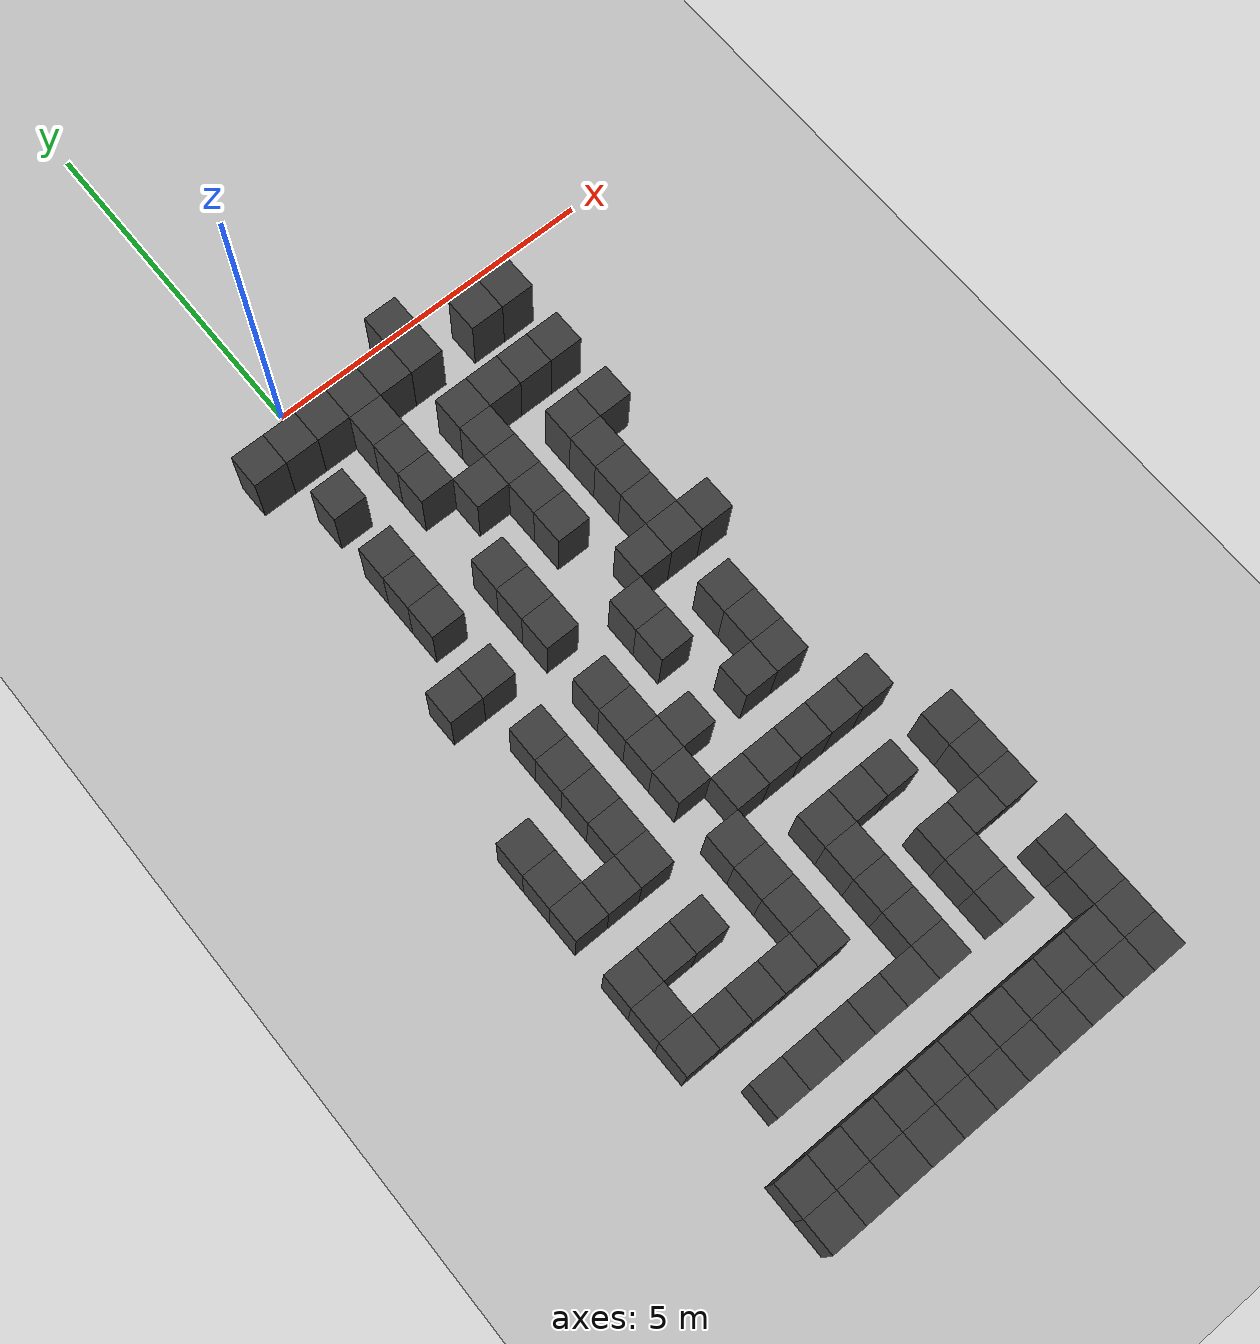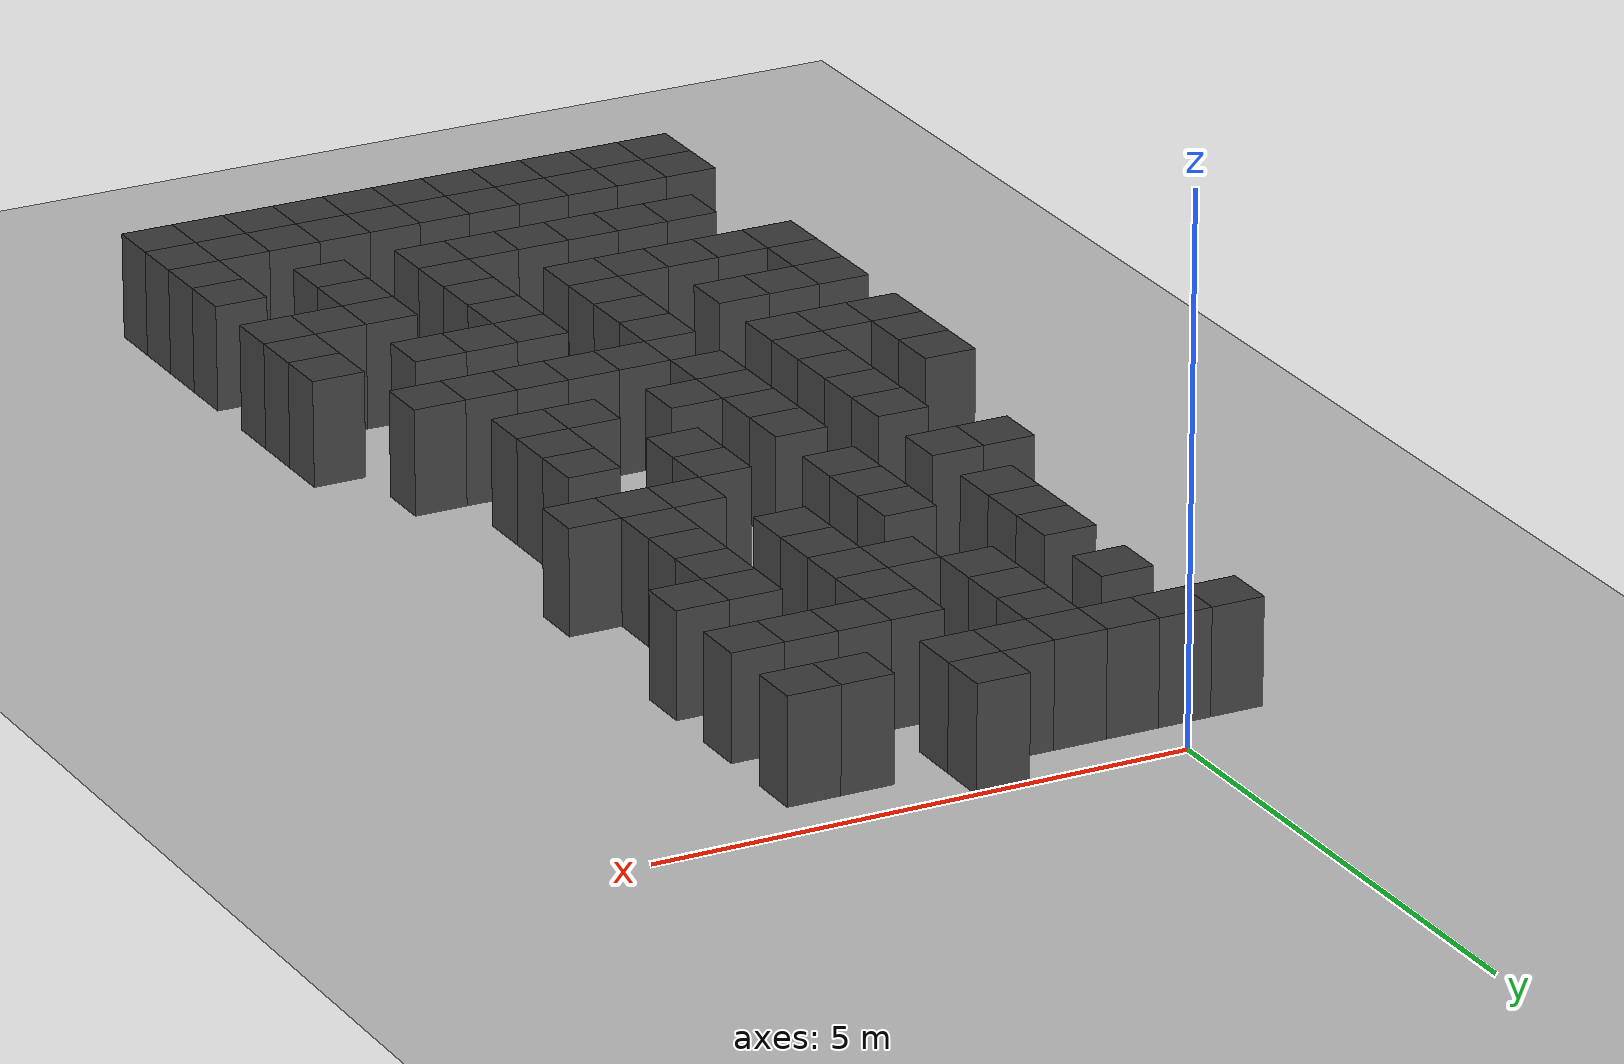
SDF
<sdf version="1.7">
 <world name="map_18596">
  <model name="ground_plane">
   <static>true</static>
   <link name="link">
    <collision name="collision">
     <geometry><plane><normal>0 0 1</normal><size>200 200</size></plane></geometry>
    </collision>
    <visual name="visual">
     <geometry><plane><normal>0 0 1</normal><size>200 200</size></plane></geometry>
     <material><ambient>0.8 0.8 0.8 1</ambient><diffuse>0.8 0.8 0.8 1</diffuse></material>
    </visual>
   </link>
  </model>
  <model name="maze_environment">
   <static>true</static>
   <link name="wall_656">
    <pose>1.750 -0.250 0.500 0 0 0</pose>
    <collision name="col"><geometry><box><size>0.5 0.5 1.0</size></box></geometry></collision>
    <visual name="vis">
     <geometry><box><size>0.5 0.5 1.0</size></box></geometry>
     <material><ambient>0.15 0.15 0.15 1</ambient><diffuse>0.25 0.25 0.25 1</diffuse></material>
    </visual>
   </link>
   <link name="wall_677">
    <pose>-0.750 -0.750 0.500 0 0 0</pose>
    <collision name="col"><geometry><box><size>0.5 0.5 1.0</size></box></geometry></collision>
    <visual name="vis">
     <geometry><box><size>0.5 0.5 1.0</size></box></geometry>
     <material><ambient>0.15 0.15 0.15 1</ambient><diffuse>0.25 0.25 0.25 1</diffuse></material>
    </visual>
   </link>
   <link name="wall_678">
    <pose>-0.250 -0.750 0.500 0 0 0</pose>
    <collision name="col"><geometry><box><size>0.5 0.5 1.0</size></box></geometry></collision>
    <visual name="vis">
     <geometry><box><size>0.5 0.5 1.0</size></box></geometry>
     <material><ambient>0.15 0.15 0.15 1</ambient><diffuse>0.25 0.25 0.25 1</diffuse></material>
    </visual>
   </link>
   <link name="wall_679">
    <pose>0.250 -0.750 0.500 0 0 0</pose>
    <collision name="col"><geometry><box><size>0.5 0.5 1.0</size></box></geometry></collision>
    <visual name="vis">
     <geometry><box><size>0.5 0.5 1.0</size></box></geometry>
     <material><ambient>0.15 0.15 0.15 1</ambient><diffuse>0.25 0.25 0.25 1</diffuse></material>
    </visual>
   </link>
   <link name="wall_680">
    <pose>0.750 -0.750 0.500 0 0 0</pose>
    <collision name="col"><geometry><box><size>0.5 0.5 1.0</size></box></geometry></collision>
    <visual name="vis">
     <geometry><box><size>0.5 0.5 1.0</size></box></geometry>
     <material><ambient>0.15 0.15 0.15 1</ambient><diffuse>0.25 0.25 0.25 1</diffuse></material>
    </visual>
   </link>
   <link name="wall_681">
    <pose>1.250 -0.750 0.500 0 0 0</pose>
    <collision name="col"><geometry><box><size>0.5 0.5 1.0</size></box></geometry></collision>
    <visual name="vis">
     <geometry><box><size>0.5 0.5 1.0</size></box></geometry>
     <material><ambient>0.15 0.15 0.15 1</ambient><diffuse>0.25 0.25 0.25 1</diffuse></material>
    </visual>
   </link>
   <link name="wall_682">
    <pose>1.750 -0.750 0.500 0 0 0</pose>
    <collision name="col"><geometry><box><size>0.5 0.5 1.0</size></box></geometry></collision>
    <visual name="vis">
     <geometry><box><size>0.5 0.5 1.0</size></box></geometry>
     <material><ambient>0.15 0.15 0.15 1</ambient><diffuse>0.25 0.25 0.25 1</diffuse></material>
    </visual>
   </link>
   <link name="wall_683">
    <pose>2.750 -0.750 0.500 0 0 0</pose>
    <collision name="col"><geometry><box><size>0.5 0.5 1.0</size></box></geometry></collision>
    <visual name="vis">
     <geometry><box><size>0.5 0.5 1.0</size></box></geometry>
     <material><ambient>0.15 0.15 0.15 1</ambient><diffuse>0.25 0.25 0.25 1</diffuse></material>
    </visual>
   </link>
   <link name="wall_684">
    <pose>3.250 -0.750 0.500 0 0 0</pose>
    <collision name="col"><geometry><box><size>0.5 0.5 1.0</size></box></geometry></collision>
    <visual name="vis">
     <geometry><box><size>0.5 0.5 1.0</size></box></geometry>
     <material><ambient>0.15 0.15 0.15 1</ambient><diffuse>0.25 0.25 0.25 1</diffuse></material>
    </visual>
   </link>
   <link name="wall_706">
    <pose>0.750 -1.250 0.500 0 0 0</pose>
    <collision name="col"><geometry><box><size>0.5 0.5 1.0</size></box></geometry></collision>
    <visual name="vis">
     <geometry><box><size>0.5 0.5 1.0</size></box></geometry>
     <material><ambient>0.15 0.15 0.15 1</ambient><diffuse>0.25 0.25 0.25 1</diffuse></material>
    </visual>
   </link>
   <link name="wall_730">
    <pose>-0.250 -1.750 0.500 0 0 0</pose>
    <collision name="col"><geometry><box><size>0.5 0.5 1.0</size></box></geometry></collision>
    <visual name="vis">
     <geometry><box><size>0.5 0.5 1.0</size></box></geometry>
     <material><ambient>0.15 0.15 0.15 1</ambient><diffuse>0.25 0.25 0.25 1</diffuse></material>
    </visual>
   </link>
   <link name="wall_731">
    <pose>0.750 -1.750 0.500 0 0 0</pose>
    <collision name="col"><geometry><box><size>0.5 0.5 1.0</size></box></geometry></collision>
    <visual name="vis">
     <geometry><box><size>0.5 0.5 1.0</size></box></geometry>
     <material><ambient>0.15 0.15 0.15 1</ambient><diffuse>0.25 0.25 0.25 1</diffuse></material>
    </visual>
   </link>
   <link name="wall_732">
    <pose>1.750 -1.750 0.500 0 0 0</pose>
    <collision name="col"><geometry><box><size>0.5 0.5 1.0</size></box></geometry></collision>
    <visual name="vis">
     <geometry><box><size>0.5 0.5 1.0</size></box></geometry>
     <material><ambient>0.15 0.15 0.15 1</ambient><diffuse>0.25 0.25 0.25 1</diffuse></material>
    </visual>
   </link>
   <link name="wall_733">
    <pose>2.250 -1.750 0.500 0 0 0</pose>
    <collision name="col"><geometry><box><size>0.5 0.5 1.0</size></box></geometry></collision>
    <visual name="vis">
     <geometry><box><size>0.5 0.5 1.0</size></box></geometry>
     <material><ambient>0.15 0.15 0.15 1</ambient><diffuse>0.25 0.25 0.25 1</diffuse></material>
    </visual>
   </link>
   <link name="wall_734">
    <pose>2.750 -1.750 0.500 0 0 0</pose>
    <collision name="col"><geometry><box><size>0.5 0.5 1.0</size></box></geometry></collision>
    <visual name="vis">
     <geometry><box><size>0.5 0.5 1.0</size></box></geometry>
     <material><ambient>0.15 0.15 0.15 1</ambient><diffuse>0.25 0.25 0.25 1</diffuse></material>
    </visual>
   </link>
   <link name="wall_735">
    <pose>3.250 -1.750 0.500 0 0 0</pose>
    <collision name="col"><geometry><box><size>0.5 0.5 1.0</size></box></geometry></collision>
    <visual name="vis">
     <geometry><box><size>0.5 0.5 1.0</size></box></geometry>
     <material><ambient>0.15 0.15 0.15 1</ambient><diffuse>0.25 0.25 0.25 1</diffuse></material>
    </visual>
   </link>
   <link name="wall_753">
    <pose>0.750 -2.250 0.500 0 0 0</pose>
    <collision name="col"><geometry><box><size>0.5 0.5 1.0</size></box></geometry></collision>
    <visual name="vis">
     <geometry><box><size>0.5 0.5 1.0</size></box></geometry>
     <material><ambient>0.15 0.15 0.15 1</ambient><diffuse>0.25 0.25 0.25 1</diffuse></material>
    </visual>
   </link>
   <link name="wall_754">
    <pose>1.750 -2.250 0.500 0 0 0</pose>
    <collision name="col"><geometry><box><size>0.5 0.5 1.0</size></box></geometry></collision>
    <visual name="vis">
     <geometry><box><size>0.5 0.5 1.0</size></box></geometry>
     <material><ambient>0.15 0.15 0.15 1</ambient><diffuse>0.25 0.25 0.25 1</diffuse></material>
    </visual>
   </link>
   <link name="wall_777">
    <pose>-0.250 -2.750 0.500 0 0 0</pose>
    <collision name="col"><geometry><box><size>0.5 0.5 1.0</size></box></geometry></collision>
    <visual name="vis">
     <geometry><box><size>0.5 0.5 1.0</size></box></geometry>
     <material><ambient>0.15 0.15 0.15 1</ambient><diffuse>0.25 0.25 0.25 1</diffuse></material>
    </visual>
   </link>
   <link name="wall_778">
    <pose>1.250 -2.750 0.500 0 0 0</pose>
    <collision name="col"><geometry><box><size>0.5 0.5 1.0</size></box></geometry></collision>
    <visual name="vis">
     <geometry><box><size>0.5 0.5 1.0</size></box></geometry>
     <material><ambient>0.15 0.15 0.15 1</ambient><diffuse>0.25 0.25 0.25 1</diffuse></material>
    </visual>
   </link>
   <link name="wall_779">
    <pose>1.750 -2.750 0.500 0 0 0</pose>
    <collision name="col"><geometry><box><size>0.5 0.5 1.0</size></box></geometry></collision>
    <visual name="vis">
     <geometry><box><size>0.5 0.5 1.0</size></box></geometry>
     <material><ambient>0.15 0.15 0.15 1</ambient><diffuse>0.25 0.25 0.25 1</diffuse></material>
    </visual>
   </link>
   <link name="wall_780">
    <pose>2.750 -2.750 0.500 0 0 0</pose>
    <collision name="col"><geometry><box><size>0.5 0.5 1.0</size></box></geometry></collision>
    <visual name="vis">
     <geometry><box><size>0.5 0.5 1.0</size></box></geometry>
     <material><ambient>0.15 0.15 0.15 1</ambient><diffuse>0.25 0.25 0.25 1</diffuse></material>
    </visual>
   </link>
   <link name="wall_781">
    <pose>3.250 -2.750 0.500 0 0 0</pose>
    <collision name="col"><geometry><box><size>0.5 0.5 1.0</size></box></geometry></collision>
    <visual name="vis">
     <geometry><box><size>0.5 0.5 1.0</size></box></geometry>
     <material><ambient>0.15 0.15 0.15 1</ambient><diffuse>0.25 0.25 0.25 1</diffuse></material>
    </visual>
   </link>
   <link name="wall_802">
    <pose>-0.250 -3.250 0.500 0 0 0</pose>
    <collision name="col"><geometry><box><size>0.5 0.5 1.0</size></box></geometry></collision>
    <visual name="vis">
     <geometry><box><size>0.5 0.5 1.0</size></box></geometry>
     <material><ambient>0.15 0.15 0.15 1</ambient><diffuse>0.25 0.25 0.25 1</diffuse></material>
    </visual>
   </link>
   <link name="wall_803">
    <pose>1.750 -3.250 0.500 0 0 0</pose>
    <collision name="col"><geometry><box><size>0.5 0.5 1.0</size></box></geometry></collision>
    <visual name="vis">
     <geometry><box><size>0.5 0.5 1.0</size></box></geometry>
     <material><ambient>0.15 0.15 0.15 1</ambient><diffuse>0.25 0.25 0.25 1</diffuse></material>
    </visual>
   </link>
   <link name="wall_804">
    <pose>2.750 -3.250 0.500 0 0 0</pose>
    <collision name="col"><geometry><box><size>0.5 0.5 1.0</size></box></geometry></collision>
    <visual name="vis">
     <geometry><box><size>0.5 0.5 1.0</size></box></geometry>
     <material><ambient>0.15 0.15 0.15 1</ambient><diffuse>0.25 0.25 0.25 1</diffuse></material>
    </visual>
   </link>
   <link name="wall_827">
    <pose>-0.250 -3.750 0.500 0 0 0</pose>
    <collision name="col"><geometry><box><size>0.5 0.5 1.0</size></box></geometry></collision>
    <visual name="vis">
     <geometry><box><size>0.5 0.5 1.0</size></box></geometry>
     <material><ambient>0.15 0.15 0.15 1</ambient><diffuse>0.25 0.25 0.25 1</diffuse></material>
    </visual>
   </link>
   <link name="wall_828">
    <pose>0.750 -3.750 0.500 0 0 0</pose>
    <collision name="col"><geometry><box><size>0.5 0.5 1.0</size></box></geometry></collision>
    <visual name="vis">
     <geometry><box><size>0.5 0.5 1.0</size></box></geometry>
     <material><ambient>0.15 0.15 0.15 1</ambient><diffuse>0.25 0.25 0.25 1</diffuse></material>
    </visual>
   </link>
   <link name="wall_829">
    <pose>1.750 -3.750 0.500 0 0 0</pose>
    <collision name="col"><geometry><box><size>0.5 0.5 1.0</size></box></geometry></collision>
    <visual name="vis">
     <geometry><box><size>0.5 0.5 1.0</size></box></geometry>
     <material><ambient>0.15 0.15 0.15 1</ambient><diffuse>0.25 0.25 0.25 1</diffuse></material>
    </visual>
   </link>
   <link name="wall_830">
    <pose>2.750 -3.750 0.500 0 0 0</pose>
    <collision name="col"><geometry><box><size>0.5 0.5 1.0</size></box></geometry></collision>
    <visual name="vis">
     <geometry><box><size>0.5 0.5 1.0</size></box></geometry>
     <material><ambient>0.15 0.15 0.15 1</ambient><diffuse>0.25 0.25 0.25 1</diffuse></material>
    </visual>
   </link>
   <link name="wall_849">
    <pose>0.750 -4.250 0.500 0 0 0</pose>
    <collision name="col"><geometry><box><size>0.5 0.5 1.0</size></box></geometry></collision>
    <visual name="vis">
     <geometry><box><size>0.5 0.5 1.0</size></box></geometry>
     <material><ambient>0.15 0.15 0.15 1</ambient><diffuse>0.25 0.25 0.25 1</diffuse></material>
    </visual>
   </link>
   <link name="wall_850">
    <pose>2.750 -4.250 0.500 0 0 0</pose>
    <collision name="col"><geometry><box><size>0.5 0.5 1.0</size></box></geometry></collision>
    <visual name="vis">
     <geometry><box><size>0.5 0.5 1.0</size></box></geometry>
     <material><ambient>0.15 0.15 0.15 1</ambient><diffuse>0.25 0.25 0.25 1</diffuse></material>
    </visual>
   </link>
   <link name="wall_873">
    <pose>-0.750 -4.750 0.500 0 0 0</pose>
    <collision name="col"><geometry><box><size>0.5 0.5 1.0</size></box></geometry></collision>
    <visual name="vis">
     <geometry><box><size>0.5 0.5 1.0</size></box></geometry>
     <material><ambient>0.15 0.15 0.15 1</ambient><diffuse>0.25 0.25 0.25 1</diffuse></material>
    </visual>
   </link>
   <link name="wall_874">
    <pose>-0.250 -4.750 0.500 0 0 0</pose>
    <collision name="col"><geometry><box><size>0.5 0.5 1.0</size></box></geometry></collision>
    <visual name="vis">
     <geometry><box><size>0.5 0.5 1.0</size></box></geometry>
     <material><ambient>0.15 0.15 0.15 1</ambient><diffuse>0.25 0.25 0.25 1</diffuse></material>
    </visual>
   </link>
   <link name="wall_875">
    <pose>0.750 -4.750 0.500 0 0 0</pose>
    <collision name="col"><geometry><box><size>0.5 0.5 1.0</size></box></geometry></collision>
    <visual name="vis">
     <geometry><box><size>0.5 0.5 1.0</size></box></geometry>
     <material><ambient>0.15 0.15 0.15 1</ambient><diffuse>0.25 0.25 0.25 1</diffuse></material>
    </visual>
   </link>
   <link name="wall_876">
    <pose>2.250 -4.750 0.500 0 0 0</pose>
    <collision name="col"><geometry><box><size>0.5 0.5 1.0</size></box></geometry></collision>
    <visual name="vis">
     <geometry><box><size>0.5 0.5 1.0</size></box></geometry>
     <material><ambient>0.15 0.15 0.15 1</ambient><diffuse>0.25 0.25 0.25 1</diffuse></material>
    </visual>
   </link>
   <link name="wall_877">
    <pose>2.750 -4.750 0.500 0 0 0</pose>
    <collision name="col"><geometry><box><size>0.5 0.5 1.0</size></box></geometry></collision>
    <visual name="vis">
     <geometry><box><size>0.5 0.5 1.0</size></box></geometry>
     <material><ambient>0.15 0.15 0.15 1</ambient><diffuse>0.25 0.25 0.25 1</diffuse></material>
    </visual>
   </link>
   <link name="wall_878">
    <pose>3.250 -4.750 0.500 0 0 0</pose>
    <collision name="col"><geometry><box><size>0.5 0.5 1.0</size></box></geometry></collision>
    <visual name="vis">
     <geometry><box><size>0.5 0.5 1.0</size></box></geometry>
     <material><ambient>0.15 0.15 0.15 1</ambient><diffuse>0.25 0.25 0.25 1</diffuse></material>
    </visual>
   </link>
   <link name="wall_900">
    <pose>1.750 -5.250 0.500 0 0 0</pose>
    <collision name="col"><geometry><box><size>0.5 0.5 1.0</size></box></geometry></collision>
    <visual name="vis">
     <geometry><box><size>0.5 0.5 1.0</size></box></geometry>
     <material><ambient>0.15 0.15 0.15 1</ambient><diffuse>0.25 0.25 0.25 1</diffuse></material>
    </visual>
   </link>
   <link name="wall_922">
    <pose>-0.250 -5.750 0.500 0 0 0</pose>
    <collision name="col"><geometry><box><size>0.5 0.5 1.0</size></box></geometry></collision>
    <visual name="vis">
     <geometry><box><size>0.5 0.5 1.0</size></box></geometry>
     <material><ambient>0.15 0.15 0.15 1</ambient><diffuse>0.25 0.25 0.25 1</diffuse></material>
    </visual>
   </link>
   <link name="wall_923">
    <pose>0.750 -5.750 0.500 0 0 0</pose>
    <collision name="col"><geometry><box><size>0.5 0.5 1.0</size></box></geometry></collision>
    <visual name="vis">
     <geometry><box><size>0.5 0.5 1.0</size></box></geometry>
     <material><ambient>0.15 0.15 0.15 1</ambient><diffuse>0.25 0.25 0.25 1</diffuse></material>
    </visual>
   </link>
   <link name="wall_924">
    <pose>1.750 -5.750 0.500 0 0 0</pose>
    <collision name="col"><geometry><box><size>0.5 0.5 1.0</size></box></geometry></collision>
    <visual name="vis">
     <geometry><box><size>0.5 0.5 1.0</size></box></geometry>
     <material><ambient>0.15 0.15 0.15 1</ambient><diffuse>0.25 0.25 0.25 1</diffuse></material>
    </visual>
   </link>
   <link name="wall_925">
    <pose>2.750 -5.750 0.500 0 0 0</pose>
    <collision name="col"><geometry><box><size>0.5 0.5 1.0</size></box></geometry></collision>
    <visual name="vis">
     <geometry><box><size>0.5 0.5 1.0</size></box></geometry>
     <material><ambient>0.15 0.15 0.15 1</ambient><diffuse>0.25 0.25 0.25 1</diffuse></material>
    </visual>
   </link>
   <link name="wall_948">
    <pose>-0.250 -6.250 0.500 0 0 0</pose>
    <collision name="col"><geometry><box><size>0.5 0.5 1.0</size></box></geometry></collision>
    <visual name="vis">
     <geometry><box><size>0.5 0.5 1.0</size></box></geometry>
     <material><ambient>0.15 0.15 0.15 1</ambient><diffuse>0.25 0.25 0.25 1</diffuse></material>
    </visual>
   </link>
   <link name="wall_949">
    <pose>0.750 -6.250 0.500 0 0 0</pose>
    <collision name="col"><geometry><box><size>0.5 0.5 1.0</size></box></geometry></collision>
    <visual name="vis">
     <geometry><box><size>0.5 0.5 1.0</size></box></geometry>
     <material><ambient>0.15 0.15 0.15 1</ambient><diffuse>0.25 0.25 0.25 1</diffuse></material>
    </visual>
   </link>
   <link name="wall_950">
    <pose>2.750 -6.250 0.500 0 0 0</pose>
    <collision name="col"><geometry><box><size>0.5 0.5 1.0</size></box></geometry></collision>
    <visual name="vis">
     <geometry><box><size>0.5 0.5 1.0</size></box></geometry>
     <material><ambient>0.15 0.15 0.15 1</ambient><diffuse>0.25 0.25 0.25 1</diffuse></material>
    </visual>
   </link>
   <link name="wall_971">
    <pose>-1.250 -6.750 0.500 0 0 0</pose>
    <collision name="col"><geometry><box><size>0.5 0.5 1.0</size></box></geometry></collision>
    <visual name="vis">
     <geometry><box><size>0.5 0.5 1.0</size></box></geometry>
     <material><ambient>0.15 0.15 0.15 1</ambient><diffuse>0.25 0.25 0.25 1</diffuse></material>
    </visual>
   </link>
   <link name="wall_972">
    <pose>-0.250 -6.750 0.500 0 0 0</pose>
    <collision name="col"><geometry><box><size>0.5 0.5 1.0</size></box></geometry></collision>
    <visual name="vis">
     <geometry><box><size>0.5 0.5 1.0</size></box></geometry>
     <material><ambient>0.15 0.15 0.15 1</ambient><diffuse>0.25 0.25 0.25 1</diffuse></material>
    </visual>
   </link>
   <link name="wall_973">
    <pose>0.750 -6.750 0.500 0 0 0</pose>
    <collision name="col"><geometry><box><size>0.5 0.5 1.0</size></box></geometry></collision>
    <visual name="vis">
     <geometry><box><size>0.5 0.5 1.0</size></box></geometry>
     <material><ambient>0.15 0.15 0.15 1</ambient><diffuse>0.25 0.25 0.25 1</diffuse></material>
    </visual>
   </link>
   <link name="wall_974">
    <pose>1.250 -6.750 0.500 0 0 0</pose>
    <collision name="col"><geometry><box><size>0.5 0.5 1.0</size></box></geometry></collision>
    <visual name="vis">
     <geometry><box><size>0.5 0.5 1.0</size></box></geometry>
     <material><ambient>0.15 0.15 0.15 1</ambient><diffuse>0.25 0.25 0.25 1</diffuse></material>
    </visual>
   </link>
   <link name="wall_975">
    <pose>2.250 -6.750 0.500 0 0 0</pose>
    <collision name="col"><geometry><box><size>0.5 0.5 1.0</size></box></geometry></collision>
    <visual name="vis">
     <geometry><box><size>0.5 0.5 1.0</size></box></geometry>
     <material><ambient>0.15 0.15 0.15 1</ambient><diffuse>0.25 0.25 0.25 1</diffuse></material>
    </visual>
   </link>
   <link name="wall_976">
    <pose>2.750 -6.750 0.500 0 0 0</pose>
    <collision name="col"><geometry><box><size>0.5 0.5 1.0</size></box></geometry></collision>
    <visual name="vis">
     <geometry><box><size>0.5 0.5 1.0</size></box></geometry>
     <material><ambient>0.15 0.15 0.15 1</ambient><diffuse>0.25 0.25 0.25 1</diffuse></material>
    </visual>
   </link>
   <link name="wall_999">
    <pose>-1.250 -7.250 0.500 0 0 0</pose>
    <collision name="col"><geometry><box><size>0.5 0.5 1.0</size></box></geometry></collision>
    <visual name="vis">
     <geometry><box><size>0.5 0.5 1.0</size></box></geometry>
     <material><ambient>0.15 0.15 0.15 1</ambient><diffuse>0.25 0.25 0.25 1</diffuse></material>
    </visual>
   </link>
   <link name="wall_1000">
    <pose>-0.250 -7.250 0.500 0 0 0</pose>
    <collision name="col"><geometry><box><size>0.5 0.5 1.0</size></box></geometry></collision>
    <visual name="vis">
     <geometry><box><size>0.5 0.5 1.0</size></box></geometry>
     <material><ambient>0.15 0.15 0.15 1</ambient><diffuse>0.25 0.25 0.25 1</diffuse></material>
    </visual>
   </link>
   <link name="wall_1001">
    <pose>0.750 -7.250 0.500 0 0 0</pose>
    <collision name="col"><geometry><box><size>0.5 0.5 1.0</size></box></geometry></collision>
    <visual name="vis">
     <geometry><box><size>0.5 0.5 1.0</size></box></geometry>
     <material><ambient>0.15 0.15 0.15 1</ambient><diffuse>0.25 0.25 0.25 1</diffuse></material>
    </visual>
   </link>
   <link name="wall_1021">
    <pose>-1.250 -7.750 0.500 0 0 0</pose>
    <collision name="col"><geometry><box><size>0.5 0.5 1.0</size></box></geometry></collision>
    <visual name="vis">
     <geometry><box><size>0.5 0.5 1.0</size></box></geometry>
     <material><ambient>0.15 0.15 0.15 1</ambient><diffuse>0.25 0.25 0.25 1</diffuse></material>
    </visual>
   </link>
   <link name="wall_1022">
    <pose>-0.750 -7.750 0.500 0 0 0</pose>
    <collision name="col"><geometry><box><size>0.5 0.5 1.0</size></box></geometry></collision>
    <visual name="vis">
     <geometry><box><size>0.5 0.5 1.0</size></box></geometry>
     <material><ambient>0.15 0.15 0.15 1</ambient><diffuse>0.25 0.25 0.25 1</diffuse></material>
    </visual>
   </link>
   <link name="wall_1023">
    <pose>-0.250 -7.750 0.500 0 0 0</pose>
    <collision name="col"><geometry><box><size>0.5 0.5 1.0</size></box></geometry></collision>
    <visual name="vis">
     <geometry><box><size>0.5 0.5 1.0</size></box></geometry>
     <material><ambient>0.15 0.15 0.15 1</ambient><diffuse>0.25 0.25 0.25 1</diffuse></material>
    </visual>
   </link>
   <link name="wall_1024">
    <pose>1.250 -7.750 0.500 0 0 0</pose>
    <collision name="col"><geometry><box><size>0.5 0.5 1.0</size></box></geometry></collision>
    <visual name="vis">
     <geometry><box><size>0.5 0.5 1.0</size></box></geometry>
     <material><ambient>0.15 0.15 0.15 1</ambient><diffuse>0.25 0.25 0.25 1</diffuse></material>
    </visual>
   </link>
   <link name="wall_1025">
    <pose>1.750 -7.750 0.500 0 0 0</pose>
    <collision name="col"><geometry><box><size>0.5 0.5 1.0</size></box></geometry></collision>
    <visual name="vis">
     <geometry><box><size>0.5 0.5 1.0</size></box></geometry>
     <material><ambient>0.15 0.15 0.15 1</ambient><diffuse>0.25 0.25 0.25 1</diffuse></material>
    </visual>
   </link>
   <link name="wall_1026">
    <pose>2.250 -7.750 0.500 0 0 0</pose>
    <collision name="col"><geometry><box><size>0.5 0.5 1.0</size></box></geometry></collision>
    <visual name="vis">
     <geometry><box><size>0.5 0.5 1.0</size></box></geometry>
     <material><ambient>0.15 0.15 0.15 1</ambient><diffuse>0.25 0.25 0.25 1</diffuse></material>
    </visual>
   </link>
   <link name="wall_1027">
    <pose>2.750 -7.750 0.500 0 0 0</pose>
    <collision name="col"><geometry><box><size>0.5 0.5 1.0</size></box></geometry></collision>
    <visual name="vis">
     <geometry><box><size>0.5 0.5 1.0</size></box></geometry>
     <material><ambient>0.15 0.15 0.15 1</ambient><diffuse>0.25 0.25 0.25 1</diffuse></material>
    </visual>
   </link>
   <link name="wall_1028">
    <pose>3.250 -7.750 0.500 0 0 0</pose>
    <collision name="col"><geometry><box><size>0.5 0.5 1.0</size></box></geometry></collision>
    <visual name="vis">
     <geometry><box><size>0.5 0.5 1.0</size></box></geometry>
     <material><ambient>0.15 0.15 0.15 1</ambient><diffuse>0.25 0.25 0.25 1</diffuse></material>
    </visual>
   </link>
   <link name="wall_1049">
    <pose>0.750 -8.250 0.500 0 0 0</pose>
    <collision name="col"><geometry><box><size>0.5 0.5 1.0</size></box></geometry></collision>
    <visual name="vis">
     <geometry><box><size>0.5 0.5 1.0</size></box></geometry>
     <material><ambient>0.15 0.15 0.15 1</ambient><diffuse>0.25 0.25 0.25 1</diffuse></material>
    </visual>
   </link>
   <link name="wall_1071">
    <pose>-1.250 -8.750 0.500 0 0 0</pose>
    <collision name="col"><geometry><box><size>0.5 0.5 1.0</size></box></geometry></collision>
    <visual name="vis">
     <geometry><box><size>0.5 0.5 1.0</size></box></geometry>
     <material><ambient>0.15 0.15 0.15 1</ambient><diffuse>0.25 0.25 0.25 1</diffuse></material>
    </visual>
   </link>
   <link name="wall_1072">
    <pose>-0.750 -8.750 0.500 0 0 0</pose>
    <collision name="col"><geometry><box><size>0.5 0.5 1.0</size></box></geometry></collision>
    <visual name="vis">
     <geometry><box><size>0.5 0.5 1.0</size></box></geometry>
     <material><ambient>0.15 0.15 0.15 1</ambient><diffuse>0.25 0.25 0.25 1</diffuse></material>
    </visual>
   </link>
   <link name="wall_1073">
    <pose>-0.250 -8.750 0.500 0 0 0</pose>
    <collision name="col"><geometry><box><size>0.5 0.5 1.0</size></box></geometry></collision>
    <visual name="vis">
     <geometry><box><size>0.5 0.5 1.0</size></box></geometry>
     <material><ambient>0.15 0.15 0.15 1</ambient><diffuse>0.25 0.25 0.25 1</diffuse></material>
    </visual>
   </link>
   <link name="wall_1074">
    <pose>0.750 -8.750 0.500 0 0 0</pose>
    <collision name="col"><geometry><box><size>0.5 0.5 1.0</size></box></geometry></collision>
    <visual name="vis">
     <geometry><box><size>0.5 0.5 1.0</size></box></geometry>
     <material><ambient>0.15 0.15 0.15 1</ambient><diffuse>0.25 0.25 0.25 1</diffuse></material>
    </visual>
   </link>
   <link name="wall_1075">
    <pose>1.750 -8.750 0.500 0 0 0</pose>
    <collision name="col"><geometry><box><size>0.5 0.5 1.0</size></box></geometry></collision>
    <visual name="vis">
     <geometry><box><size>0.5 0.5 1.0</size></box></geometry>
     <material><ambient>0.15 0.15 0.15 1</ambient><diffuse>0.25 0.25 0.25 1</diffuse></material>
    </visual>
   </link>
   <link name="wall_1076">
    <pose>2.250 -8.750 0.500 0 0 0</pose>
    <collision name="col"><geometry><box><size>0.5 0.5 1.0</size></box></geometry></collision>
    <visual name="vis">
     <geometry><box><size>0.5 0.5 1.0</size></box></geometry>
     <material><ambient>0.15 0.15 0.15 1</ambient><diffuse>0.25 0.25 0.25 1</diffuse></material>
    </visual>
   </link>
   <link name="wall_1077">
    <pose>2.750 -8.750 0.500 0 0 0</pose>
    <collision name="col"><geometry><box><size>0.5 0.5 1.0</size></box></geometry></collision>
    <visual name="vis">
     <geometry><box><size>0.5 0.5 1.0</size></box></geometry>
     <material><ambient>0.15 0.15 0.15 1</ambient><diffuse>0.25 0.25 0.25 1</diffuse></material>
    </visual>
   </link>
   <link name="wall_1078">
    <pose>3.750 -8.750 0.500 0 0 0</pose>
    <collision name="col"><geometry><box><size>0.5 0.5 1.0</size></box></geometry></collision>
    <visual name="vis">
     <geometry><box><size>0.5 0.5 1.0</size></box></geometry>
     <material><ambient>0.15 0.15 0.15 1</ambient><diffuse>0.25 0.25 0.25 1</diffuse></material>
    </visual>
   </link>
   <link name="wall_1097">
    <pose>-1.250 -9.250 0.500 0 0 0</pose>
    <collision name="col"><geometry><box><size>0.5 0.5 1.0</size></box></geometry></collision>
    <visual name="vis">
     <geometry><box><size>0.5 0.5 1.0</size></box></geometry>
     <material><ambient>0.15 0.15 0.15 1</ambient><diffuse>0.25 0.25 0.25 1</diffuse></material>
    </visual>
   </link>
   <link name="wall_1098">
    <pose>0.750 -9.250 0.500 0 0 0</pose>
    <collision name="col"><geometry><box><size>0.5 0.5 1.0</size></box></geometry></collision>
    <visual name="vis">
     <geometry><box><size>0.5 0.5 1.0</size></box></geometry>
     <material><ambient>0.15 0.15 0.15 1</ambient><diffuse>0.25 0.25 0.25 1</diffuse></material>
    </visual>
   </link>
   <link name="wall_1099">
    <pose>1.750 -9.250 0.500 0 0 0</pose>
    <collision name="col"><geometry><box><size>0.5 0.5 1.0</size></box></geometry></collision>
    <visual name="vis">
     <geometry><box><size>0.5 0.5 1.0</size></box></geometry>
     <material><ambient>0.15 0.15 0.15 1</ambient><diffuse>0.25 0.25 0.25 1</diffuse></material>
    </visual>
   </link>
   <link name="wall_1100">
    <pose>3.750 -9.250 0.500 0 0 0</pose>
    <collision name="col"><geometry><box><size>0.5 0.5 1.0</size></box></geometry></collision>
    <visual name="vis">
     <geometry><box><size>0.5 0.5 1.0</size></box></geometry>
     <material><ambient>0.15 0.15 0.15 1</ambient><diffuse>0.25 0.25 0.25 1</diffuse></material>
    </visual>
   </link>
   <link name="wall_1121">
    <pose>-1.250 -9.750 0.500 0 0 0</pose>
    <collision name="col"><geometry><box><size>0.5 0.5 1.0</size></box></geometry></collision>
    <visual name="vis">
     <geometry><box><size>0.5 0.5 1.0</size></box></geometry>
     <material><ambient>0.15 0.15 0.15 1</ambient><diffuse>0.25 0.25 0.25 1</diffuse></material>
    </visual>
   </link>
   <link name="wall_1122">
    <pose>-0.750 -9.750 0.500 0 0 0</pose>
    <collision name="col"><geometry><box><size>0.5 0.5 1.0</size></box></geometry></collision>
    <visual name="vis">
     <geometry><box><size>0.5 0.5 1.0</size></box></geometry>
     <material><ambient>0.15 0.15 0.15 1</ambient><diffuse>0.25 0.25 0.25 1</diffuse></material>
    </visual>
   </link>
   <link name="wall_1123">
    <pose>-0.250 -9.750 0.500 0 0 0</pose>
    <collision name="col"><geometry><box><size>0.5 0.5 1.0</size></box></geometry></collision>
    <visual name="vis">
     <geometry><box><size>0.5 0.5 1.0</size></box></geometry>
     <material><ambient>0.15 0.15 0.15 1</ambient><diffuse>0.25 0.25 0.25 1</diffuse></material>
    </visual>
   </link>
   <link name="wall_1124">
    <pose>0.250 -9.750 0.500 0 0 0</pose>
    <collision name="col"><geometry><box><size>0.5 0.5 1.0</size></box></geometry></collision>
    <visual name="vis">
     <geometry><box><size>0.5 0.5 1.0</size></box></geometry>
     <material><ambient>0.15 0.15 0.15 1</ambient><diffuse>0.25 0.25 0.25 1</diffuse></material>
    </visual>
   </link>
   <link name="wall_1125">
    <pose>0.750 -9.750 0.500 0 0 0</pose>
    <collision name="col"><geometry><box><size>0.5 0.5 1.0</size></box></geometry></collision>
    <visual name="vis">
     <geometry><box><size>0.5 0.5 1.0</size></box></geometry>
     <material><ambient>0.15 0.15 0.15 1</ambient><diffuse>0.25 0.25 0.25 1</diffuse></material>
    </visual>
   </link>
   <link name="wall_1126">
    <pose>1.750 -9.750 0.500 0 0 0</pose>
    <collision name="col"><geometry><box><size>0.5 0.5 1.0</size></box></geometry></collision>
    <visual name="vis">
     <geometry><box><size>0.5 0.5 1.0</size></box></geometry>
     <material><ambient>0.15 0.15 0.15 1</ambient><diffuse>0.25 0.25 0.25 1</diffuse></material>
    </visual>
   </link>
   <link name="wall_1127">
    <pose>2.750 -9.750 0.500 0 0 0</pose>
    <collision name="col"><geometry><box><size>0.5 0.5 1.0</size></box></geometry></collision>
    <visual name="vis">
     <geometry><box><size>0.5 0.5 1.0</size></box></geometry>
     <material><ambient>0.15 0.15 0.15 1</ambient><diffuse>0.25 0.25 0.25 1</diffuse></material>
    </visual>
   </link>
   <link name="wall_1128">
    <pose>3.250 -9.750 0.500 0 0 0</pose>
    <collision name="col"><geometry><box><size>0.5 0.5 1.0</size></box></geometry></collision>
    <visual name="vis">
     <geometry><box><size>0.5 0.5 1.0</size></box></geometry>
     <material><ambient>0.15 0.15 0.15 1</ambient><diffuse>0.25 0.25 0.25 1</diffuse></material>
    </visual>
   </link>
   <link name="wall_1129">
    <pose>3.750 -9.750 0.500 0 0 0</pose>
    <collision name="col"><geometry><box><size>0.5 0.5 1.0</size></box></geometry></collision>
    <visual name="vis">
     <geometry><box><size>0.5 0.5 1.0</size></box></geometry>
     <material><ambient>0.15 0.15 0.15 1</ambient><diffuse>0.25 0.25 0.25 1</diffuse></material>
    </visual>
   </link>
   <link name="wall_1152">
    <pose>1.750 -10.250 0.500 0 0 0</pose>
    <collision name="col"><geometry><box><size>0.5 0.5 1.0</size></box></geometry></collision>
    <visual name="vis">
     <geometry><box><size>0.5 0.5 1.0</size></box></geometry>
     <material><ambient>0.15 0.15 0.15 1</ambient><diffuse>0.25 0.25 0.25 1</diffuse></material>
    </visual>
   </link>
   <link name="wall_1153">
    <pose>2.750 -10.250 0.500 0 0 0</pose>
    <collision name="col"><geometry><box><size>0.5 0.5 1.0</size></box></geometry></collision>
    <visual name="vis">
     <geometry><box><size>0.5 0.5 1.0</size></box></geometry>
     <material><ambient>0.15 0.15 0.15 1</ambient><diffuse>0.25 0.25 0.25 1</diffuse></material>
    </visual>
   </link>
   <link name="wall_1174">
    <pose>-0.750 -10.750 0.500 0 0 0</pose>
    <collision name="col"><geometry><box><size>0.5 0.5 1.0</size></box></geometry></collision>
    <visual name="vis">
     <geometry><box><size>0.5 0.5 1.0</size></box></geometry>
     <material><ambient>0.15 0.15 0.15 1</ambient><diffuse>0.25 0.25 0.25 1</diffuse></material>
    </visual>
   </link>
   <link name="wall_1175">
    <pose>-0.250 -10.750 0.500 0 0 0</pose>
    <collision name="col"><geometry><box><size>0.5 0.5 1.0</size></box></geometry></collision>
    <visual name="vis">
     <geometry><box><size>0.5 0.5 1.0</size></box></geometry>
     <material><ambient>0.15 0.15 0.15 1</ambient><diffuse>0.25 0.25 0.25 1</diffuse></material>
    </visual>
   </link>
   <link name="wall_1176">
    <pose>0.250 -10.750 0.500 0 0 0</pose>
    <collision name="col"><geometry><box><size>0.5 0.5 1.0</size></box></geometry></collision>
    <visual name="vis">
     <geometry><box><size>0.5 0.5 1.0</size></box></geometry>
     <material><ambient>0.15 0.15 0.15 1</ambient><diffuse>0.25 0.25 0.25 1</diffuse></material>
    </visual>
   </link>
   <link name="wall_1177">
    <pose>0.750 -10.750 0.500 0 0 0</pose>
    <collision name="col"><geometry><box><size>0.5 0.5 1.0</size></box></geometry></collision>
    <visual name="vis">
     <geometry><box><size>0.5 0.5 1.0</size></box></geometry>
     <material><ambient>0.15 0.15 0.15 1</ambient><diffuse>0.25 0.25 0.25 1</diffuse></material>
    </visual>
   </link>
   <link name="wall_1178">
    <pose>1.250 -10.750 0.500 0 0 0</pose>
    <collision name="col"><geometry><box><size>0.5 0.5 1.0</size></box></geometry></collision>
    <visual name="vis">
     <geometry><box><size>0.5 0.5 1.0</size></box></geometry>
     <material><ambient>0.15 0.15 0.15 1</ambient><diffuse>0.25 0.25 0.25 1</diffuse></material>
    </visual>
   </link>
   <link name="wall_1179">
    <pose>1.750 -10.750 0.500 0 0 0</pose>
    <collision name="col"><geometry><box><size>0.5 0.5 1.0</size></box></geometry></collision>
    <visual name="vis">
     <geometry><box><size>0.5 0.5 1.0</size></box></geometry>
     <material><ambient>0.15 0.15 0.15 1</ambient><diffuse>0.25 0.25 0.25 1</diffuse></material>
    </visual>
   </link>
   <link name="wall_1180">
    <pose>2.750 -10.750 0.500 0 0 0</pose>
    <collision name="col"><geometry><box><size>0.5 0.5 1.0</size></box></geometry></collision>
    <visual name="vis">
     <geometry><box><size>0.5 0.5 1.0</size></box></geometry>
     <material><ambient>0.15 0.15 0.15 1</ambient><diffuse>0.25 0.25 0.25 1</diffuse></material>
    </visual>
   </link>
   <link name="wall_1181">
    <pose>3.750 -10.750 0.500 0 0 0</pose>
    <collision name="col"><geometry><box><size>0.5 0.5 1.0</size></box></geometry></collision>
    <visual name="vis">
     <geometry><box><size>0.5 0.5 1.0</size></box></geometry>
     <material><ambient>0.15 0.15 0.15 1</ambient><diffuse>0.25 0.25 0.25 1</diffuse></material>
    </visual>
   </link>
   <link name="wall_1198">
    <pose>3.750 -11.250 0.500 0 0 0</pose>
    <collision name="col"><geometry><box><size>0.5 0.5 1.0</size></box></geometry></collision>
    <visual name="vis">
     <geometry><box><size>0.5 0.5 1.0</size></box></geometry>
     <material><ambient>0.15 0.15 0.15 1</ambient><diffuse>0.25 0.25 0.25 1</diffuse></material>
    </visual>
   </link>
   <link name="wall_1224">
    <pose>-1.250 -11.750 0.500 0 0 0</pose>
    <collision name="col"><geometry><box><size>0.5 0.5 1.0</size></box></geometry></collision>
    <visual name="vis">
     <geometry><box><size>0.5 0.5 1.0</size></box></geometry>
     <material><ambient>0.15 0.15 0.15 1</ambient><diffuse>0.25 0.25 0.25 1</diffuse></material>
    </visual>
   </link>
   <link name="wall_1225">
    <pose>-0.750 -11.750 0.500 0 0 0</pose>
    <collision name="col"><geometry><box><size>0.5 0.5 1.0</size></box></geometry></collision>
    <visual name="vis">
     <geometry><box><size>0.5 0.5 1.0</size></box></geometry>
     <material><ambient>0.15 0.15 0.15 1</ambient><diffuse>0.25 0.25 0.25 1</diffuse></material>
    </visual>
   </link>
   <link name="wall_1226">
    <pose>-0.250 -11.750 0.500 0 0 0</pose>
    <collision name="col"><geometry><box><size>0.5 0.5 1.0</size></box></geometry></collision>
    <visual name="vis">
     <geometry><box><size>0.5 0.5 1.0</size></box></geometry>
     <material><ambient>0.15 0.15 0.15 1</ambient><diffuse>0.25 0.25 0.25 1</diffuse></material>
    </visual>
   </link>
   <link name="wall_1227">
    <pose>0.250 -11.750 0.500 0 0 0</pose>
    <collision name="col"><geometry><box><size>0.5 0.5 1.0</size></box></geometry></collision>
    <visual name="vis">
     <geometry><box><size>0.5 0.5 1.0</size></box></geometry>
     <material><ambient>0.15 0.15 0.15 1</ambient><diffuse>0.25 0.25 0.25 1</diffuse></material>
    </visual>
   </link>
   <link name="wall_1228">
    <pose>0.750 -11.750 0.500 0 0 0</pose>
    <collision name="col"><geometry><box><size>0.5 0.5 1.0</size></box></geometry></collision>
    <visual name="vis">
     <geometry><box><size>0.5 0.5 1.0</size></box></geometry>
     <material><ambient>0.15 0.15 0.15 1</ambient><diffuse>0.25 0.25 0.25 1</diffuse></material>
    </visual>
   </link>
   <link name="wall_1229">
    <pose>1.250 -11.750 0.500 0 0 0</pose>
    <collision name="col"><geometry><box><size>0.5 0.5 1.0</size></box></geometry></collision>
    <visual name="vis">
     <geometry><box><size>0.5 0.5 1.0</size></box></geometry>
     <material><ambient>0.15 0.15 0.15 1</ambient><diffuse>0.25 0.25 0.25 1</diffuse></material>
    </visual>
   </link>
   <link name="wall_1230">
    <pose>1.750 -11.750 0.500 0 0 0</pose>
    <collision name="col"><geometry><box><size>0.5 0.5 1.0</size></box></geometry></collision>
    <visual name="vis">
     <geometry><box><size>0.5 0.5 1.0</size></box></geometry>
     <material><ambient>0.15 0.15 0.15 1</ambient><diffuse>0.25 0.25 0.25 1</diffuse></material>
    </visual>
   </link>
   <link name="wall_1231">
    <pose>2.250 -11.750 0.500 0 0 0</pose>
    <collision name="col"><geometry><box><size>0.5 0.5 1.0</size></box></geometry></collision>
    <visual name="vis">
     <geometry><box><size>0.5 0.5 1.0</size></box></geometry>
     <material><ambient>0.15 0.15 0.15 1</ambient><diffuse>0.25 0.25 0.25 1</diffuse></material>
    </visual>
   </link>
   <link name="wall_1232">
    <pose>2.750 -11.750 0.500 0 0 0</pose>
    <collision name="col"><geometry><box><size>0.5 0.5 1.0</size></box></geometry></collision>
    <visual name="vis">
     <geometry><box><size>0.5 0.5 1.0</size></box></geometry>
     <material><ambient>0.15 0.15 0.15 1</ambient><diffuse>0.25 0.25 0.25 1</diffuse></material>
    </visual>
   </link>
   <link name="wall_1233">
    <pose>3.250 -11.750 0.500 0 0 0</pose>
    <collision name="col"><geometry><box><size>0.5 0.5 1.0</size></box></geometry></collision>
    <visual name="vis">
     <geometry><box><size>0.5 0.5 1.0</size></box></geometry>
     <material><ambient>0.15 0.15 0.15 1</ambient><diffuse>0.25 0.25 0.25 1</diffuse></material>
    </visual>
   </link>
   <link name="wall_1234">
    <pose>3.750 -11.750 0.500 0 0 0</pose>
    <collision name="col"><geometry><box><size>0.5 0.5 1.0</size></box></geometry></collision>
    <visual name="vis">
     <geometry><box><size>0.5 0.5 1.0</size></box></geometry>
     <material><ambient>0.15 0.15 0.15 1</ambient><diffuse>0.25 0.25 0.25 1</diffuse></material>
    </visual>
   </link>
   <link name="wall_1272">
    <pose>-1.250 -12.250 0.500 0 0 0</pose>
    <collision name="col"><geometry><box><size>0.5 0.5 1.0</size></box></geometry></collision>
    <visual name="vis">
     <geometry><box><size>0.5 0.5 1.0</size></box></geometry>
     <material><ambient>0.15 0.15 0.15 1</ambient><diffuse>0.25 0.25 0.25 1</diffuse></material>
    </visual>
   </link>
   <link name="wall_1273">
    <pose>-0.750 -12.250 0.500 0 0 0</pose>
    <collision name="col"><geometry><box><size>0.5 0.5 1.0</size></box></geometry></collision>
    <visual name="vis">
     <geometry><box><size>0.5 0.5 1.0</size></box></geometry>
     <material><ambient>0.15 0.15 0.15 1</ambient><diffuse>0.25 0.25 0.25 1</diffuse></material>
    </visual>
   </link>
   <link name="wall_1274">
    <pose>-0.250 -12.250 0.500 0 0 0</pose>
    <collision name="col"><geometry><box><size>0.5 0.5 1.0</size></box></geometry></collision>
    <visual name="vis">
     <geometry><box><size>0.5 0.5 1.0</size></box></geometry>
     <material><ambient>0.15 0.15 0.15 1</ambient><diffuse>0.25 0.25 0.25 1</diffuse></material>
    </visual>
   </link>
   <link name="wall_1275">
    <pose>0.250 -12.250 0.500 0 0 0</pose>
    <collision name="col"><geometry><box><size>0.5 0.5 1.0</size></box></geometry></collision>
    <visual name="vis">
     <geometry><box><size>0.5 0.5 1.0</size></box></geometry>
     <material><ambient>0.15 0.15 0.15 1</ambient><diffuse>0.25 0.25 0.25 1</diffuse></material>
    </visual>
   </link>
   <link name="wall_1276">
    <pose>0.750 -12.250 0.500 0 0 0</pose>
    <collision name="col"><geometry><box><size>0.5 0.5 1.0</size></box></geometry></collision>
    <visual name="vis">
     <geometry><box><size>0.5 0.5 1.0</size></box></geometry>
     <material><ambient>0.15 0.15 0.15 1</ambient><diffuse>0.25 0.25 0.25 1</diffuse></material>
    </visual>
   </link>
   <link name="wall_1277">
    <pose>1.250 -12.250 0.500 0 0 0</pose>
    <collision name="col"><geometry><box><size>0.5 0.5 1.0</size></box></geometry></collision>
    <visual name="vis">
     <geometry><box><size>0.5 0.5 1.0</size></box></geometry>
     <material><ambient>0.15 0.15 0.15 1</ambient><diffuse>0.25 0.25 0.25 1</diffuse></material>
    </visual>
   </link>
   <link name="wall_1278">
    <pose>1.750 -12.250 0.500 0 0 0</pose>
    <collision name="col"><geometry><box><size>0.5 0.5 1.0</size></box></geometry></collision>
    <visual name="vis">
     <geometry><box><size>0.5 0.5 1.0</size></box></geometry>
     <material><ambient>0.15 0.15 0.15 1</ambient><diffuse>0.25 0.25 0.25 1</diffuse></material>
    </visual>
   </link>
   <link name="wall_1279">
    <pose>2.250 -12.250 0.500 0 0 0</pose>
    <collision name="col"><geometry><box><size>0.5 0.5 1.0</size></box></geometry></collision>
    <visual name="vis">
     <geometry><box><size>0.5 0.5 1.0</size></box></geometry>
     <material><ambient>0.15 0.15 0.15 1</ambient><diffuse>0.25 0.25 0.25 1</diffuse></material>
    </visual>
   </link>
   <link name="wall_1280">
    <pose>2.750 -12.250 0.500 0 0 0</pose>
    <collision name="col"><geometry><box><size>0.5 0.5 1.0</size></box></geometry></collision>
    <visual name="vis">
     <geometry><box><size>0.5 0.5 1.0</size></box></geometry>
     <material><ambient>0.15 0.15 0.15 1</ambient><diffuse>0.25 0.25 0.25 1</diffuse></material>
    </visual>
   </link>
   <link name="wall_1281">
    <pose>3.250 -12.250 0.500 0 0 0</pose>
    <collision name="col"><geometry><box><size>0.5 0.5 1.0</size></box></geometry></collision>
    <visual name="vis">
     <geometry><box><size>0.5 0.5 1.0</size></box></geometry>
     <material><ambient>0.15 0.15 0.15 1</ambient><diffuse>0.25 0.25 0.25 1</diffuse></material>
    </visual>
   </link>
   <link name="wall_1282">
    <pose>3.750 -12.250 0.500 0 0 0</pose>
    <collision name="col"><geometry><box><size>0.5 0.5 1.0</size></box></geometry></collision>
    <visual name="vis">
     <geometry><box><size>0.5 0.5 1.0</size></box></geometry>
     <material><ambient>0.15 0.15 0.15 1</ambient><diffuse>0.25 0.25 0.25 1</diffuse></material>
    </visual>
   </link>
  </model>
 </world>
</sdf>
